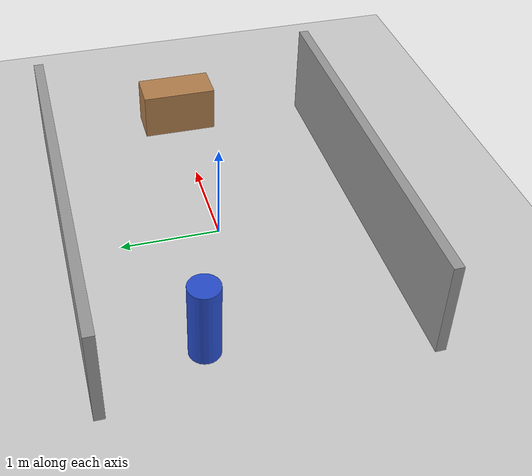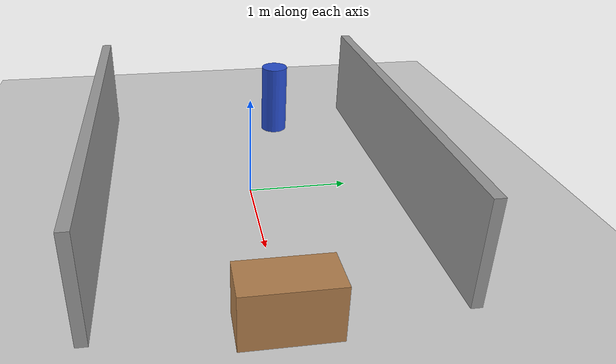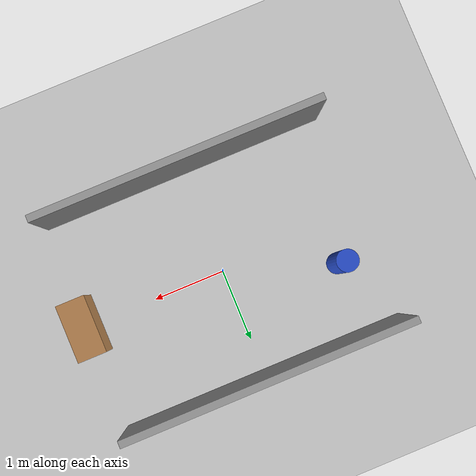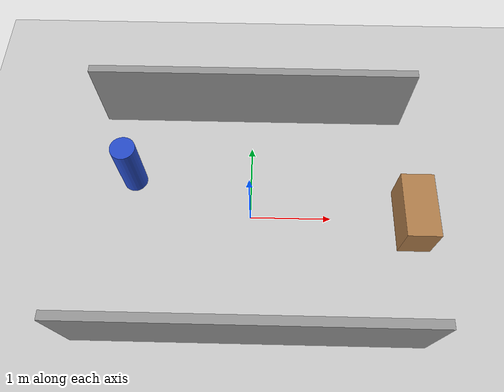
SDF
<?xml version="1.0" ?>
<!--
  阶段 3.4：带障碍物的小世界，便于验收 /scan（空世界只有 max_range）。
  机器人默认 spawn 在原点；四周有箱子/墙。
-->
<sdf version="1.6">
  <world name="lidar_test">
    <physics type="ode">
      <max_step_size>0.001</max_step_size>
      <real_time_factor>1.0</real_time_factor>
    </physics>
    <include>
      <uri>model://ground_plane</uri>
    </include>
    <include>
      <uri>model://sun</uri>
    </include>

    <!-- 前方箱子 -->
    <model name="box_front">
      <pose>2.0 0 0.25 0 0 0</pose>
      <static>true</static>
      <link name="link">
        <collision name="collision">
          <geometry><box><size>0.4 0.8 0.5</size></box></geometry>
          <laser_retro>100.0</laser_retro>
        </collision>
        <visual name="visual">
          <geometry><box><size>0.4 0.8 0.5</size></box></geometry>
          <material>
            <script>
              <uri>file://media/materials/scripts/gazebo.material</uri>
              <name>Gazebo/Wood</name>
            </script>
          </material>
        </visual>
      </link>
    </model>

    <!-- 左侧墙 -->
    <model name="wall_left">
      <pose>0 1.5 0.5 0 0 0</pose>
      <static>true</static>
      <link name="link">
        <collision name="collision">
          <geometry><box><size>4.0 0.1 1.0</size></box></geometry>
          <laser_retro>80.0</laser_retro>
        </collision>
        <visual name="visual">
          <geometry><box><size>4.0 0.1 1.0</size></box></geometry>
          <material>
            <script>
              <uri>file://media/materials/scripts/gazebo.material</uri>
              <name>Gazebo/Grey</name>
            </script>
          </material>
        </visual>
      </link>
    </model>

    <!-- 右侧墙 -->
    <model name="wall_right">
      <pose>0 -1.5 0.5 0 0 0</pose>
      <static>true</static>
      <link name="link">
        <collision name="collision">
          <geometry><box><size>4.0 0.1 1.0</size></box></geometry>
          <laser_retro>80.0</laser_retro>
        </collision>
        <visual name="visual">
          <geometry><box><size>4.0 0.1 1.0</size></box></geometry>
          <material>
            <script>
              <uri>file://media/materials/scripts/gazebo.material</uri>
              <name>Gazebo/Grey</name>
            </script>
          </material>
        </visual>
      </link>
    </model>

    <!-- 后方柱子：半径 0.15m，距原点约 1.58m → 在 360° 扫描里只占 ~11 条射线，看起来会「稀」 -->
    <model name="pillar_rear">
      <pose>-1.5 0.5 0.4 0 0 0</pose>
      <static>true</static>
      <link name="link">
        <collision name="collision">
          <geometry><cylinder><radius>0.15</radius><length>0.8</length></cylinder></geometry>
          <laser_retro>60.0</laser_retro>
        </collision>
        <visual name="visual">
          <geometry><cylinder><radius>0.15</radius><length>0.8</length></cylinder></geometry>
          <material>
            <script>
              <uri>file://media/materials/scripts/gazebo.material</uri>
              <name>Gazebo/Blue</name>
            </script>
          </material>
        </visual>
      </link>
    </model>
  </world>
</sdf>
